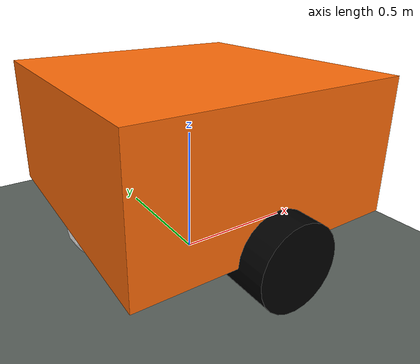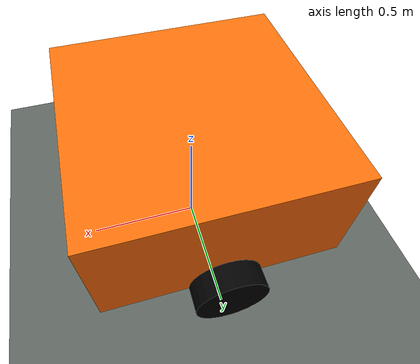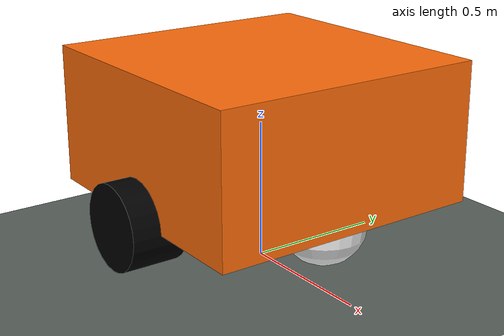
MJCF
<mujoco model="world_flat">
  <!-- Flat ground + DiffBot planar wrapper (F5 third-party URDF skin). -->
  <compiler angle="radian"/>
  <include file="mechs/diffbot_planar.xml"/>

  <worldbody>
    <geom name="ground" type="plane" size="30 30 0.1"
          friction="0.8 0.02 0.01" rgba="0.35 0.38 0.36 1"/>
  </worldbody>
</mujoco>

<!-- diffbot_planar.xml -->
<mujoco model="diffbot_planar">
  <option timestep="0.002" integrator="RK4" gravity="0 0 -9.81"/>

  <default>
    <geom contype="1" conaffinity="1" friction="0.8 0.02 0.01"/>
  </default>

  <worldbody>
    <body name="chassis" pos="0 0 0.5">
      <joint name="slide_x" type="slide" axis="1 0 0" damping="0.2"/>
      <joint name="slide_y" type="slide" axis="0 1 0" damping="0.2"/>
      <joint name="yaw_z" type="hinge" axis="0 0 1" damping="0.05"/>
      <inertial pos="0 0 0" mass="12.0" diaginertia="0.15 0.25 0.3"/>
      <geom name="chassis_box" type="box" size="0.5 0.5 0.25"
            rgba="1.0 0.4235294118 0.03921568627 1"/>
      <geom name="caster_frontal_wheel" type="sphere" size="0.15" pos="0.35 0.0 -0.25" mass="0" contype="0" conaffinity="0" rgba="1 1 1 1"/>
      <geom name="caster_rear_wheel" type="sphere" size="0.15" pos="-0.35 0.0 -0.25" mass="0" contype="0" conaffinity="0" rgba="1 1 1 1"/>
      <body name="left_wheel" pos="0.0 -0.5 -0.25">
        <joint name="left_wheel_joint" type="hinge" axis="0 1 0" damping="0.01"/>
        <geom name="left_wheel_geom" type="cylinder" size="0.15 0.1" quat="0.7071 0.7071 0 0" mass="0.05" contype="0" conaffinity="0" rgba="0 0 0 1"/>
      </body>
      <body name="right_wheel" pos="0.0 0.5 -0.25">
        <joint name="right_wheel_joint" type="hinge" axis="0 1 0" damping="0.01"/>
        <geom name="right_wheel_geom" type="cylinder" size="0.15 0.1" quat="0.7071 0.7071 0 0" mass="0.05" contype="0" conaffinity="0" rgba="0 0 0 1"/>
      </body>
    </body>
  </worldbody>

  <actuator>
    <velocity name="vx" joint="slide_x" kv="120" forcerange="-400 400" ctrlrange="-3 3"/>
    <velocity name="vy" joint="slide_y" kv="120" forcerange="-400 400" ctrlrange="-3 3"/>
    <velocity name="yaw_rate" joint="yaw_z" kv="60" forcerange="-200 200" ctrlrange="-6 6"/>
  </actuator>
</mujoco>
